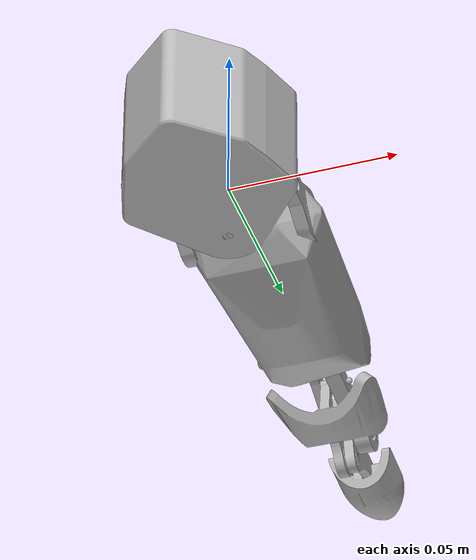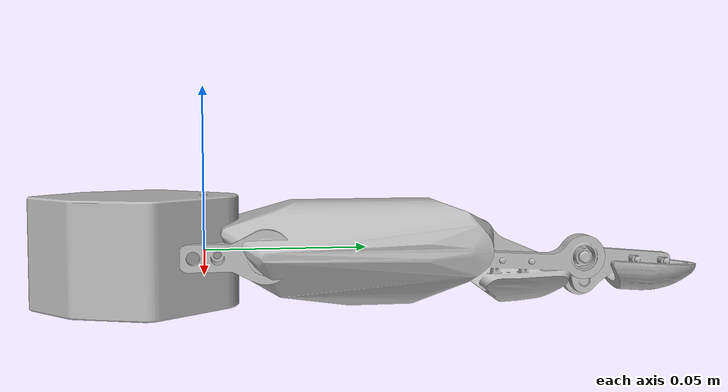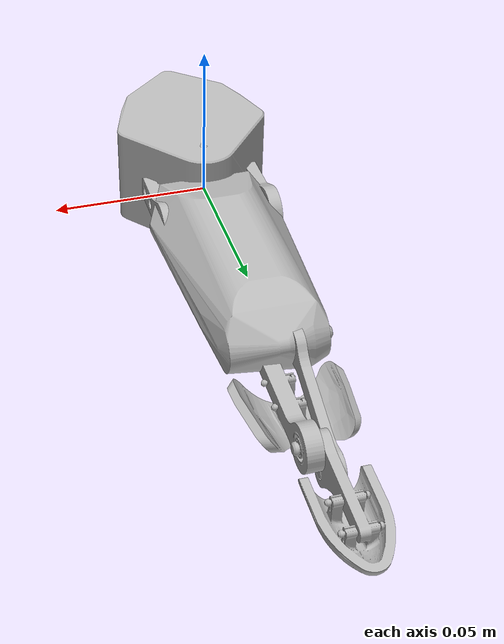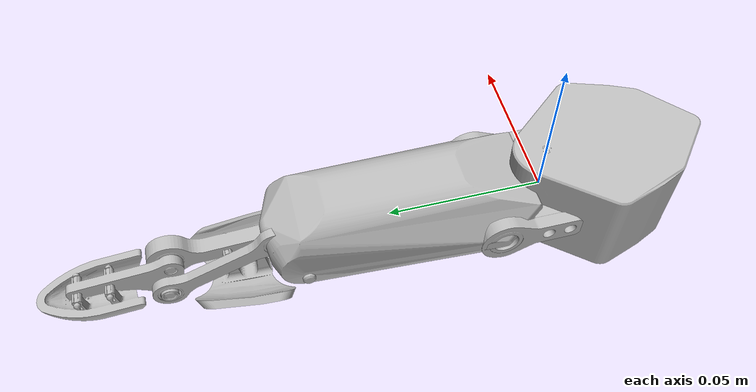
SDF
<?xml version="1.0"?>
<sdf version="1.9">
  <model name="finger">

  <!-- Generated by blender_export_sdf.py from /home/michael-jenz/rds_ws/src/robotic-finger/blender_files/rds_finger_4bar.blend -->
  <!-- Four-bar linkage: proximal_phalanx + middle_phalanx1/2 + distal_phalanx -->
  <!-- Loop-closing joint: dip_flex2 (middle_phalanx2 → distal_phalanx) -->

    <drake:collision_filter_group name="finger_links">
      <drake:member>base_link</drake:member>
      <drake:member>mcp_link</drake:member>
      <drake:member>proximal_phalanx</drake:member>
      <drake:member>middle_phalanx1</drake:member>
      <drake:member>middle_phalanx2</drake:member>
      <drake:member>distal_phalanx</drake:member>
      <drake:ignored_collision_filter_group>finger_links</drake:ignored_collision_filter_group>
    </drake:collision_filter_group>
    <!-- ═══════════════ LINKS ═══════════════ -->

    <!-- Finger base -->
    <link name="base_link">
      <pose>0.0 0.0 0.0 0 0 0</pose>
      <visual name="visual">
        <geometry>
          <mesh>
            <uri>package://finger_description/meshes/sdf/visual/base_link.obj</uri>
          </mesh>
        </geometry>
      </visual>
      <collision name="collision">
        <geometry>
          <mesh>
            <uri>package://finger_description/meshes/sdf/collision/col_base_link.obj</uri>
          </mesh>
        </geometry>
      </collision>
      <inertial>
        <pose>0 0 0 0 0 0</pose>
        <mass>0.07241006652943038</mass>
        <inertia><ixx>3.223e-05</ixx><ixy>0</ixy><ixz>0</ixz><iyy>1.02751e-05</iyy><iyz>0</iyz><izz>3.06386e-05</izz></inertia>
      </inertial>
    </link>

    <!-- Space between MCP splay and flexion -->
    <link name="mcp_link">
      <pose>0.0 0.0 0.0 0 0 0</pose>
      <visual name="visual">
        <geometry>
          <mesh>
            <uri>package://finger_description/meshes/sdf/visual/mcp_link.obj</uri>
          </mesh>
        </geometry>
      </visual>
      <collision name="collision">
        <geometry>
          <mesh>
            <uri>package://finger_description/meshes/sdf/collision/col_mcp_link.obj</uri>
          </mesh>
        </geometry>
      </collision>
      <inertial>
        <pose>0 0 0 0 0 0</pose>
        <mass>0.03113489819130729</mass>
        <inertia><ixx>2.28566e-06</ixx><ixy>0</ixy><ixz>0</ixz><iyy>2.08227e-06</iyy><iyz>0</iyz><izz>3.5123e-06</izz></inertia>
      </inertial>
    </link>

    <!-- Proximal phalanx -->
    <link name="proximal_phalanx">
      <pose>0.0013 0.0178 -0.0 0 0 0</pose>
      <visual name="visual">
        <geometry>
          <mesh>
            <uri>package://finger_description/meshes/sdf/visual/proximal_phalanx.obj</uri>
          </mesh>
        </geometry>
      </visual>
      <collision name="collision">
        <geometry>
          <mesh>
            <uri>package://finger_description/meshes/sdf/collision/col_proximal_phalanx.obj</uri>
          </mesh>
        </geometry>
      </collision>
      <inertial>
        <pose>0 0 0 0 0 0</pose>
        <mass>0.06881640359899475</mass>
        <inertia><ixx>9.64515e-05</ixx><ixy>0</ixy><ixz>0</ixz><iyy>5.32031e-06</iyy><iyz>0</iyz><izz>9.87913e-05</izz></inertia>
      </inertial>
    </link>

    <!-- Middle phalanx 1 (four-bar coupler, dorsal) -->
    <link name="middle_phalanx1">
      <pose>-0.0001 0.079 -0.0017 0 0 0</pose>
      <visual name="visual">
        <geometry>
          <mesh>
            <uri>package://finger_description/meshes/sdf/visual/middle_phalanx1.obj</uri>
          </mesh>
        </geometry>
      </visual>
      <collision name="collision">
        <geometry>
          <mesh>
            <uri>package://finger_description/meshes/sdf/collision/col_middle_phalanx1.obj</uri>
          </mesh>
        </geometry>
      </collision>
      <inertial>
        <pose>0 0 0 0 0 0</pose>
        <mass>0.01634817187440465</mass>
        <inertia><ixx>7.92552e-05</ixx><ixy>0</ixy><ixz>0</ixz><iyy>1.36397e-06</iyy><iyz>0</iyz><izz>7.90238e-05</izz></inertia>
      </inertial>
    </link>

    <!-- Middle phalanx 2 (four-bar coupler, volar) -->
    <link name="middle_phalanx2">
      <pose>-0.0019 0.0869 0.0021 0 0 0</pose>
      <visual name="visual">
        <geometry>
          <mesh>
            <uri>package://finger_description/meshes/sdf/visual/middle_phalanx2.obj</uri>
          </mesh>
        </geometry>
      </visual>
      <collision name="collision">
        <geometry>
          <mesh>
            <uri>package://finger_description/meshes/sdf/collision/col_middle_phalanx2.obj</uri>
          </mesh>
        </geometry>
      </collision>
      <inertial>
        <pose>0 0 0 0 0 0</pose>
        <mass>0.0030012660203522774</mass>
        <inertia><ixx>1.66959e-05</ixx><ixy>0</ixy><ixz>0</ixz><iyy>1.15858e-07</iyy><iyz>0</iyz><izz>1.66212e-05</izz></inertia>
      </inertial>
    </link>

    <!-- Distal phalanx -->
    <link name="distal_phalanx">
      <pose>0.0036 0.1195 -0.0039 0 0 0</pose>
      <visual name="visual">
        <geometry>
          <mesh>
            <uri>package://finger_description/meshes/sdf/visual/distal_phalanx.obj</uri>
          </mesh>
        </geometry>
      </visual>
      <collision name="collision">
        <geometry>
          <mesh>
            <uri>package://finger_description/meshes/sdf/collision/col_distal_phalanx.obj</uri>
          </mesh>
        </geometry>
      </collision>
      <inertial>
        <pose>0 0 0 0 0 0</pose>
        <mass>0.011307436062312565</mass>
        <inertia><ixx>0.000108316</ixx><ixy>0</ixy><ixz>0</ixz><iyy>6.99259e-07</iyy><iyz>0</iyz><izz>0.000107856</izz></inertia>
      </inertial>
    </link>

    <!-- ═══════════════ JOINTS ══════════════ -->

    <!-- Mcp Splay -->
    <joint name="mcp_splay" type="revolute">
      <pose relative_to="base_link">0.0 0.0 0.0 0 0 0</pose>
      <parent>base_link</parent>
      <child>mcp_link</child>
      <axis>
        <xyz expressed_in="__model__">0.0 0.0 1.0</xyz>
        <limit>
          <lower>-0.174533</lower>
          <upper>0.174533</upper>
          <effort>10000.0</effort>
          <velocity>10000.0</velocity>
        </limit>
        <dynamics>
          <damping>0.01</damping>
          <friction>0.0</friction>
        </dynamics>
      </axis>
    </joint>

    <!-- Mcp Flexion -->
    <joint name="mcp_flexion" type="revolute">
      <pose relative_to="mcp_link">0.0013 0.0178 -0.0 0 0 0</pose>
      <parent>mcp_link</parent>
      <child>proximal_phalanx</child>
      <axis>
        <xyz expressed_in="__model__">-1.0 0.0 0.0</xyz>
        <limit>
          <lower>0.0</lower>
          <upper>1.57</upper>
          <effort>10000.0</effort>
          <velocity>10000.0</velocity>
        </limit>
        <dynamics>
          <damping>0.01</damping>
          <friction>0.0</friction>
        </dynamics>
      </axis>
    </joint>

    <!-- Pip Flex1 -->
    <joint name="pip_flex1" type="revolute">
      <pose relative_to="proximal_phalanx">-0.0014 0.0612 -0.0017 0 0 0</pose>
      <parent>proximal_phalanx</parent>
      <child>middle_phalanx1</child>
      <axis>
        <xyz expressed_in="__model__">-1.0 0.0 0.0</xyz>
        <limit>
          <lower>0.0</lower>
          <upper>1.57</upper>
          <effort>10000.0</effort>
          <velocity>10000.0</velocity>
        </limit>
        <dynamics>
          <damping>0.01</damping>
          <friction>0.0</friction>
        </dynamics>
      </axis>
    </joint>

    <!-- Pip Flex2 -->
    <joint name="pip_flex2" type="revolute">
      <pose relative_to="proximal_phalanx">-0.0032 0.0691 0.0021 0 0 0</pose>
      <parent>proximal_phalanx</parent>
      <child>middle_phalanx2</child>
      <axis>
        <xyz expressed_in="__model__">-1.0 0.0 0.0</xyz>
        <limit>
          <lower>0.0</lower>
          <upper>1.57</upper>
          <effort>0.0</effort>
          <velocity>10000.0</velocity>
        </limit>
        <dynamics>
          <damping>0.01</damping>
          <friction>0.0</friction>
        </dynamics>
      </axis>
    </joint>

    <!-- Dip Flex1 -->
    <joint name="dip_flex1" type="revolute">
      <pose relative_to="middle_phalanx1">0.0037 0.0405 -0.0022 0 0 0</pose>
      <parent>middle_phalanx1</parent>
      <child>distal_phalanx</child>
      <axis>
        <xyz expressed_in="__model__">-1.0 0.0 0.0</xyz>
        <limit>
          <lower>0.0</lower>
          <upper>1.57</upper>
          <effort>0.0</effort>
          <velocity>10000.0</velocity>
        </limit>
        <dynamics>
          <damping>0.01</damping>
          <friction>0.0</friction>
        </dynamics>
      </axis>
    </joint>

  </model>
</sdf>
